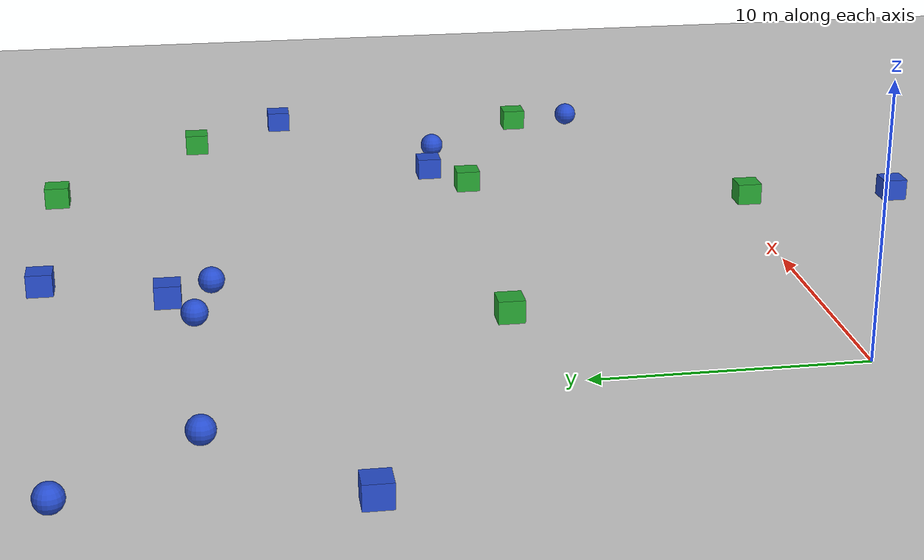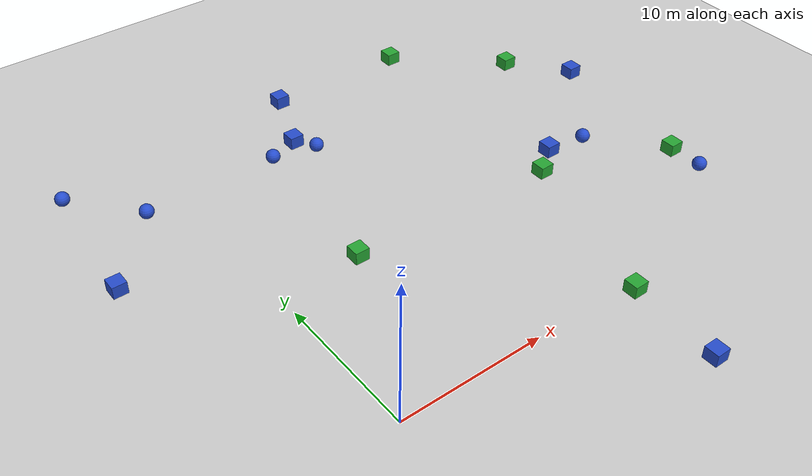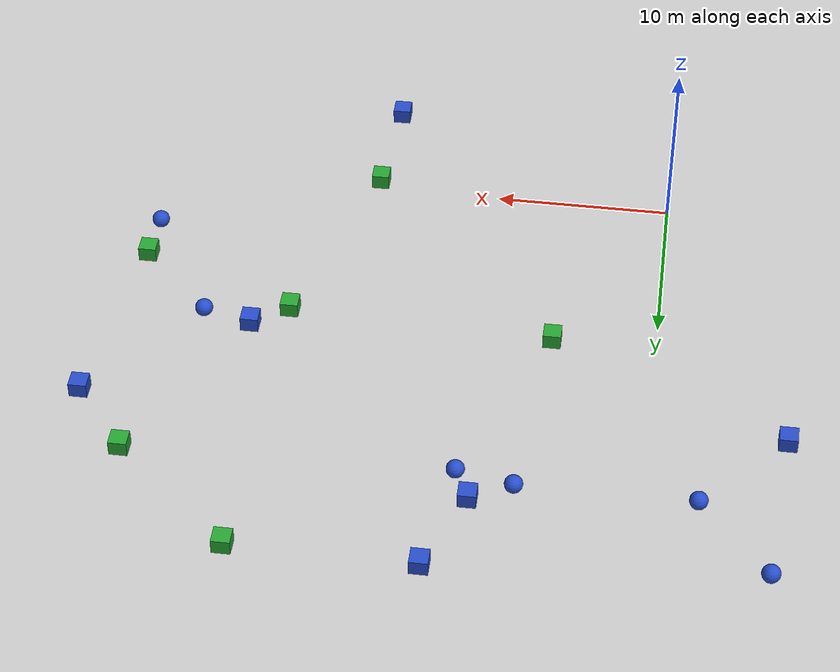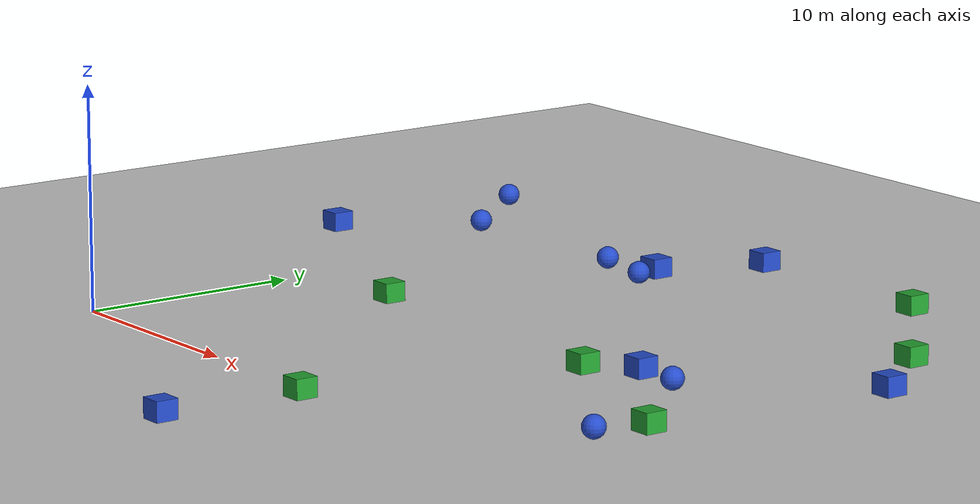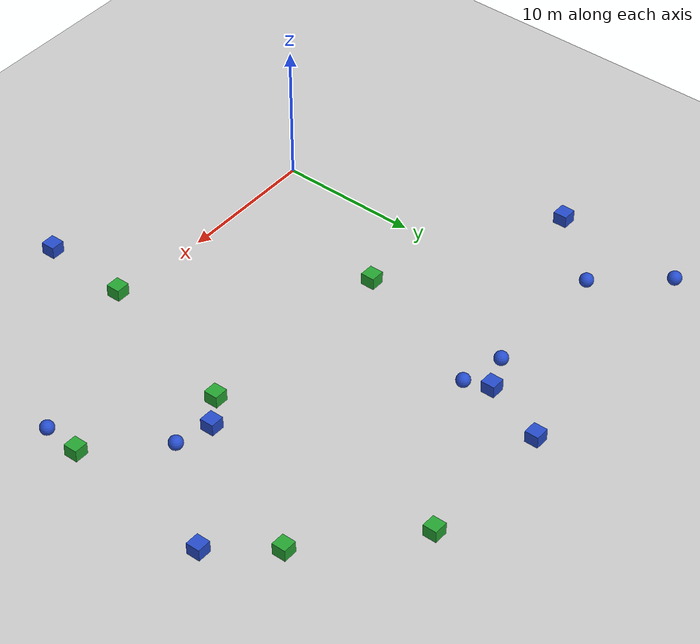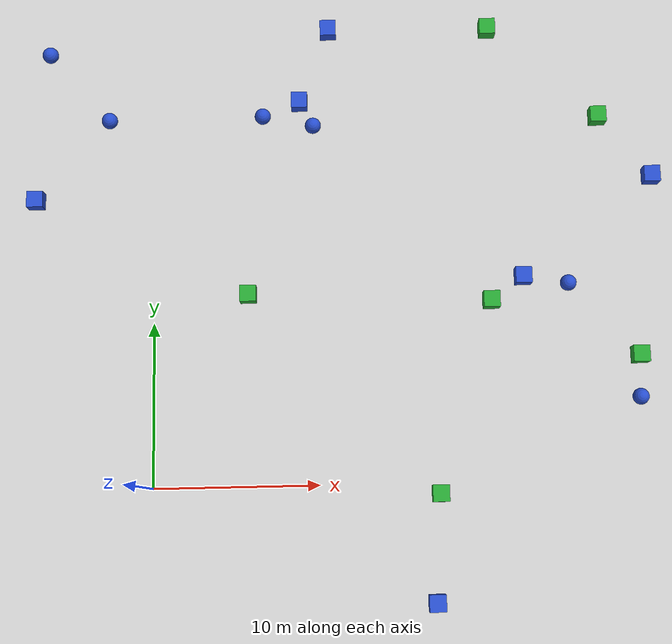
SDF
<sdf version="1.6">
 <world name="default">
  <light name="sun" type="directional">
   <pose>0 0 10 0 -0 0</pose>
   <diffuse>0.8 0.8 0.8 1</diffuse>
   <specular>0.1 0.1 0.1 1</specular>
   <attenuation>
    <range>1000</range>
    <constant>0.9</constant>
    <linear>0.01</linear>
    <quadratic>0.001</quadratic>
   </attenuation>
   <direction>-0.5 0.5 -1</direction>
  </light>
  <model name="ground_plane">
   <static>1</static>
   <link name="link">
    <collision name="collision">
     <geometry><plane><normal>0 0 1</normal><size>100 100</size></plane></geometry>
     <surface><friction><ode><mu>100</mu><mu2>50</mu2></ode></friction></surface>
    </collision>
    <visual name="visual">
     <cast_shadows>0</cast_shadows>
     <geometry><plane><normal>0 0 1</normal><size>100 100</size></plane></geometry>
     <material>
      <script><uri>file://media/materials/scripts/gazebo.material</uri><name>Gazebo/Grey</name></script>
     </material>
    </visual>
   </link>
  </model>
  <model name="unit_box_green_6">
   <pose>27.8197311406 22.6364587946 0.329741 0 -0 0</pose>
   <link name="link">
    <inertial>
     <mass>1</mass>
     <inertia>
      <ixx>0.166667</ixx>
      <ixy>0</ixy>
      <ixz>0</ixz>
      <iyy>0.166667</iyy>
      <iyz>0</iyz>
      <izz>0.166667</izz>
     </inertia>
    </inertial>
    <collision name="collision"><geometry><box><size>1 1 0.999999</size></box></geometry></collision>
    <visual name="visual">
     <geometry><box><size>1 1 0.999999</size></box></geometry>
     <material>
      <script><name>Gazebo/Green</name><uri>file://media/materials/scripts/gazebo.material</uri></script>
     </material>
    </visual>
   </link>
  </model>
  <model name="unit_box_green_5">
   <pose>17.1395627019 -0.630475374608 0.329741 0 -0 0</pose>
   <link name="link">
    <inertial>
     <mass>1</mass>
     <inertia>
      <ixx>0.166667</ixx>
      <ixy>0</ixy>
      <ixz>0</ixz>
      <iyy>0.166667</iyy>
      <iyz>0</iyz>
      <izz>0.166667</izz>
     </inertia>
    </inertial>
    <collision name="collision"><geometry><box><size>1 1 0.999999</size></box></geometry></collision>
    <visual name="visual">
     <geometry><box><size>1 1 0.999999</size></box></geometry>
     <material>
      <script><name>Gazebo/Green</name><uri>file://media/materials/scripts/gazebo.material</uri></script>
     </material>
    </visual>
   </link>
  </model>
  <model name="unit_box_green_4">
   <pose>5.77354686106 11.6631255922 0.329741 0 -0 0</pose>
   <link name="link">
    <inertial>
     <mass>1</mass>
     <inertia>
      <ixx>0.166667</ixx>
      <ixy>0</ixy>
      <ixz>0</ixz>
      <iyy>0.166667</iyy>
      <iyz>0</iyz>
      <izz>0.166667</izz>
     </inertia>
    </inertial>
    <collision name="collision"><geometry><box><size>1 1 0.999999</size></box></geometry></collision>
    <visual name="visual">
     <geometry><box><size>1 1 0.999999</size></box></geometry>
     <material>
      <script><name>Gazebo/Green</name><uri>file://media/materials/scripts/gazebo.material</uri></script>
     </material>
    </visual>
   </link>
  </model>
  <model name="unit_box_green_3">
   <pose>29.5584949951 7.45638542035 0.329741 0 -0 0</pose>
   <link name="link">
    <inertial>
     <mass>1</mass>
     <inertia>
      <ixx>0.166667</ixx>
      <ixy>0</ixy>
      <ixz>0</ixz>
      <iyy>0.166667</iyy>
      <iyz>0</iyz>
      <izz>0.166667</izz>
     </inertia>
    </inertial>
    <collision name="collision"><geometry><box><size>1 1 0.999999</size></box></geometry></collision>
    <visual name="visual">
     <geometry><box><size>1 1 0.999999</size></box></geometry>
     <material>
      <script><name>Gazebo/Green</name><uri>file://media/materials/scripts/gazebo.material</uri></script>
     </material>
    </visual>
   </link>
  </model>
  <model name="unit_box_green_2">
   <pose>21.1039167954 28.6238191574 0.329741 0 -0 0</pose>
   <link name="link">
    <inertial>
     <mass>1</mass>
     <inertia>
      <ixx>0.166667</ixx>
      <ixy>0</ixy>
      <ixz>0</ixz>
      <iyy>0.166667</iyy>
      <iyz>0</iyz>
      <izz>0.166667</izz>
     </inertia>
    </inertial>
    <collision name="collision"><geometry><box><size>1 1 0.999999</size></box></geometry></collision>
    <visual name="visual">
     <geometry><box><size>1 1 0.999999</size></box></geometry>
     <material>
      <script><name>Gazebo/Green</name><uri>file://media/materials/scripts/gazebo.material</uri></script>
     </material>
    </visual>
   </link>
  </model>
  <model name="unit_box_green_1">
   <pose>20.6557838143 11.0107018481 0.329741 0 -0 0</pose>
   <link name="link">
    <inertial>
     <mass>1</mass>
     <inertia>
      <ixx>0.166667</ixx>
      <ixy>0</ixy>
      <ixz>0</ixz>
      <iyy>0.166667</iyy>
      <iyz>0</iyz>
      <izz>0.166667</izz>
     </inertia>
    </inertial>
    <collision name="collision"><geometry><box><size>1 1 0.999999</size></box></geometry></collision>
    <visual name="visual">
     <geometry><box><size>1 1 0.999999</size></box></geometry>
     <material>
      <script><name>Gazebo/Green</name><uri>file://media/materials/scripts/gazebo.material</uri></script>
     </material>
    </visual>
   </link>
  </model>
  <model name="unit_box_blue_6">
   <pose>-7.36571264548 17.8800843731 0.329741 0 -0 0</pose>
   <link name="link">
    <inertial>
     <mass>1</mass>
     <inertia>
      <ixx>0.166667</ixx>
      <ixy>0</ixy>
      <ixz>0</ixz>
      <iyy>0.166667</iyy>
      <iyz>0</iyz>
      <izz>0.166667</izz>
     </inertia>
    </inertial>
    <collision name="collision"><geometry><box><size>1 1 0.999999</size></box></geometry></collision>
    <visual name="visual">
     <geometry><box><size>1 1 0.999999</size></box></geometry>
     <material>
      <script><name>Gazebo/Blue</name><uri>file://media/materials/scripts/gazebo.material</uri></script>
     </material>
    </visual>
   </link>
  </model>
  <model name="unit_box_blue_5">
   <pose>30.9412119387 18.7020193209 0.329741 0 -0 0</pose>
   <link name="link">
    <inertial>
     <mass>1</mass>
     <inertia>
      <ixx>0.166667</ixx>
      <ixy>0</ixy>
      <ixz>0</ixz>
      <iyy>0.166667</iyy>
      <iyz>0</iyz>
      <izz>0.166667</izz>
     </inertia>
    </inertial>
    <collision name="collision"><geometry><box><size>1 1 0.999999</size></box></geometry></collision>
    <visual name="visual">
     <geometry><box><size>1 1 0.999999</size></box></geometry>
     <material>
      <script><name>Gazebo/Blue</name><uri>file://media/materials/scripts/gazebo.material</uri></script>
     </material>
    </visual>
   </link>
  </model>
  <model name="unit_box_blue_4">
   <pose>10.9761798767 28.714394423 0.329741 0 -0 0</pose>
   <link name="link">
    <inertial>
     <mass>1</mass>
     <inertia>
      <ixx>0.166667</ixx>
      <ixy>0</ixy>
      <ixz>0</ixz>
      <iyy>0.166667</iyy>
      <iyz>0</iyz>
      <izz>0.166667</izz>
     </inertia>
    </inertial>
    <collision name="collision"><geometry><box><size>1 1 0.999999</size></box></geometry></collision>
    <visual name="visual">
     <geometry><box><size>1 1 0.999999</size></box></geometry>
     <material>
      <script><name>Gazebo/Blue</name><uri>file://media/materials/scripts/gazebo.material</uri></script>
     </material>
    </visual>
   </link>
  </model>
  <model name="unit_box_blue_3">
   <pose>9.08873480918 23.9635931313 0.329741 0 -0 0</pose>
   <link name="link">
    <inertial>
     <mass>1</mass>
     <inertia>
      <ixx>0.166667</ixx>
      <ixy>0</ixy>
      <ixz>0</ixz>
      <iyy>0.166667</iyy>
      <iyz>0</iyz>
      <izz>0.166667</izz>
     </inertia>
    </inertial>
    <collision name="collision"><geometry><box><size>1 1 0.999999</size></box></geometry></collision>
    <visual name="visual">
     <geometry><box><size>1 1 0.999999</size></box></geometry>
     <material>
      <script><name>Gazebo/Blue</name><uri>file://media/materials/scripts/gazebo.material</uri></script>
     </material>
    </visual>
   </link>
  </model>
  <model name="unit_box_blue_2">
   <pose>22.6665971496 12.4587901314 0.329741 0 -0 0</pose>
   <link name="link">
    <inertial>
     <mass>1</mass>
     <inertia>
      <ixx>0.166667</ixx>
      <ixy>0</ixy>
      <ixz>0</ixz>
      <iyy>0.166667</iyy>
      <iyz>0</iyz>
      <izz>0.166667</izz>
     </inertia>
    </inertial>
    <collision name="collision"><geometry><box><size>1 1 0.999999</size></box></geometry></collision>
    <visual name="visual">
     <geometry><box><size>1 1 0.999999</size></box></geometry>
     <material>
      <script><name>Gazebo/Blue</name><uri>file://media/materials/scripts/gazebo.material</uri></script>
     </material>
    </visual>
   </link>
  </model>
  <model name="unit_box_blue_1">
   <pose>16.7174078081 -6.97248522637 0.329741 0 -0 0</pose>
   <link name="link">
    <inertial>
     <mass>1</mass>
     <inertia>
      <ixx>0.166667</ixx>
      <ixy>0</ixy>
      <ixz>0</ixz>
      <iyy>0.166667</iyy>
      <iyz>0</iyz>
      <izz>0.166667</izz>
     </inertia>
    </inertial>
    <collision name="collision"><geometry><box><size>1 1 0.999999</size></box></geometry></collision>
    <visual name="visual">
     <geometry><box><size>1 1 0.999999</size></box></geometry>
     <material>
      <script><name>Gazebo/Blue</name><uri>file://media/materials/scripts/gazebo.material</uri></script>
     </material>
    </visual>
   </link>
  </model>
  <model name="unit_sphere_blue_6">
   <pose>6.78531096105 22.9947748586 0.5 0 -0 0</pose>
   <link name="link">
    <inertial>
     <mass>1</mass>
     <inertia><ixx>0.1</ixx><ixy>0</ixy><ixz>0</ixz><iyy>0.1</iyy><iyz>0</iyz><izz>0.1</izz></inertia>
    </inertial>
    <collision name="collision"><geometry><sphere><radius>0.5</radius></sphere></geometry></collision>
    <visual name="visual">
     <geometry><sphere><radius>0.5</radius></sphere></geometry>
     <material>
      <script><name>Gazebo/Blue</name><uri>file://media/materials/scripts/gazebo.material</uri></script>
     </material>
    </visual>
   </link>
  </model>
  <model name="unit_sphere_blue_5">
   <pose>29.3931059237 4.87115117349 0.5 0 -0 0</pose>
   <link name="link">
    <inertial>
     <mass>1</mass>
     <inertia><ixx>0.1</ixx><ixy>0</ixy><ixz>0</ixz><iyy>0.1</iyy><iyz>0</iyz><izz>0.1</izz></inertia>
    </inertial>
    <collision name="collision"><geometry><sphere><radius>0.5</radius></sphere></geometry></collision>
    <visual name="visual">
     <geometry><sphere><radius>0.5</radius></sphere></geometry>
     <material>
      <script><name>Gazebo/Blue</name><uri>file://media/materials/scripts/gazebo.material</uri></script>
     </material>
    </visual>
   </link>
  </model>
  <model name="unit_sphere_blue_4">
   <pose>9.91704761067 22.3252222111 0.5 0 -0 0</pose>
   <link name="link">
    <inertial>
     <mass>1</mass>
     <inertia><ixx>0.1</ixx><ixy>0</ixy><ixz>0</ixz><iyy>0.1</iyy><iyz>0</iyz><izz>0.1</izz></inertia>
    </inertial>
    <collision name="collision"><geometry><sphere><radius>0.5</radius></sphere></geometry></collision>
    <visual name="visual">
     <geometry><sphere><radius>0.5</radius></sphere></geometry>
     <material>
      <script><name>Gazebo/Blue</name><uri>file://media/materials/scripts/gazebo.material</uri></script>
     </material>
    </visual>
   </link>
  </model>
  <model name="unit_sphere_blue_3">
   <pose>25.3972459101 11.9426318883 0.5 0 -0 0</pose>
   <link name="link">
    <inertial>
     <mass>1</mass>
     <inertia><ixx>0.1</ixx><ixy>0</ixy><ixz>0</ixz><iyy>0.1</iyy><iyz>0</iyz><izz>0.1</izz></inertia>
    </inertial>
    <collision name="collision"><geometry><sphere><radius>0.5</radius></sphere></geometry></collision>
    <visual name="visual">
     <geometry><sphere><radius>0.5</radius></sphere></geometry>
     <material>
      <script><name>Gazebo/Blue</name><uri>file://media/materials/scripts/gazebo.material</uri></script>
     </material>
    </visual>
   </link>
  </model>
  <model name="unit_sphere_blue_2">
   <pose>-6.627042441 27.340899857 0.5 0 -0 0</pose>
   <link name="link">
    <inertial>
     <mass>1</mass>
     <inertia><ixx>0.1</ixx><ixy>0</ixy><ixz>0</ixz><iyy>0.1</iyy><iyz>0</iyz><izz>0.1</izz></inertia>
    </inertial>
    <collision name="collision"><geometry><sphere><radius>0.5</radius></sphere></geometry></collision>
    <visual name="visual">
     <geometry><sphere><radius>0.5</radius></sphere></geometry>
     <material>
      <script><name>Gazebo/Blue</name><uri>file://media/materials/scripts/gazebo.material</uri></script>
     </material>
    </visual>
   </link>
  </model>
  <model name="unit_sphere_blue_1">
   <pose>-2.82038349944 22.9162783781 0.5 0 -0 0</pose>
   <link name="link">
    <inertial>
     <mass>1</mass>
     <inertia><ixx>0.1</ixx><ixy>0</ixy><ixz>0</ixz><iyy>0.1</iyy><iyz>0</iyz><izz>0.1</izz></inertia>
    </inertial>
    <collision name="collision"><geometry><sphere><radius>0.5</radius></sphere></geometry></collision>
    <visual name="visual">
     <geometry><sphere><radius>0.5</radius></sphere></geometry>
     <material>
      <script><name>Gazebo/Blue</name><uri>file://media/materials/scripts/gazebo.material</uri></script>
     </material>
    </visual>
   </link>
  </model>
  <gravity>0 0 -9.8</gravity>
  <magnetic_field>6e-06 2.3e-05 -4.2e-05</magnetic_field>
  <atmosphere type="adiabatic"/>
  <physics default="0" name="default_physics" type="ode">
   <max_step_size>0.001</max_step_size>
   <real_time_factor>1</real_time_factor>
   <real_time_update_rate>1000</real_time_update_rate>
  </physics>
  <scene><ambient>0.4 0.4 0.4 1</ambient><background>0.7 0.7 0.7 1</background><shadows>1</shadows></scene>
  <spherical_coordinates>
   <surface_model>EARTH_WGS84</surface_model>
   <latitude_deg>0</latitude_deg>
   <longitude_deg>0</longitude_deg>
   <elevation>0</elevation>
   <heading_deg>0</heading_deg>
  </spherical_coordinates>
 </world>
</sdf>
